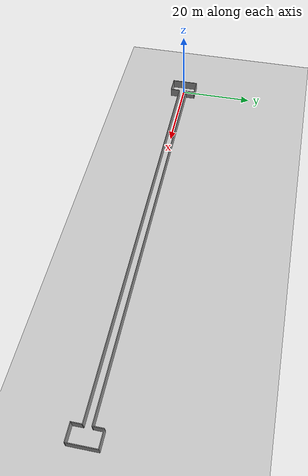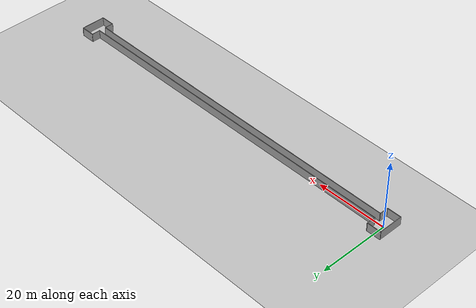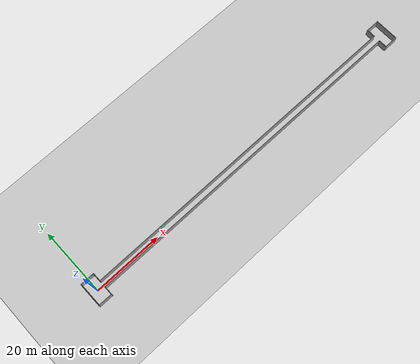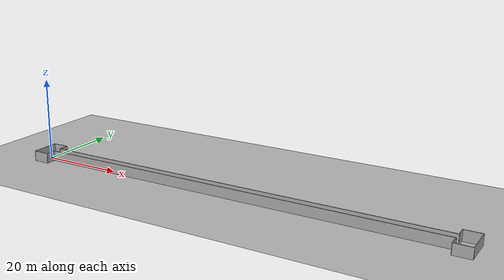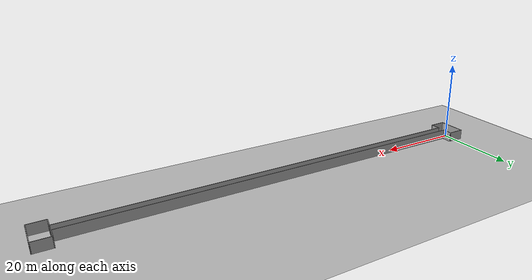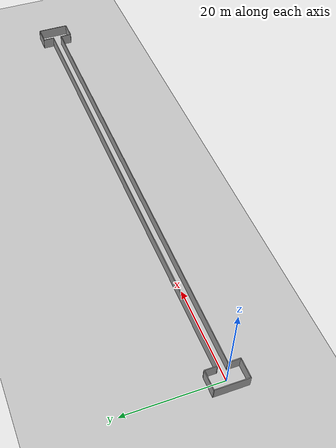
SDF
<sdf version="1.6">
 <world name="default">
  <light name="sun" type="directional">
   <pose>0 0 10 0 -0 0</pose>
   <diffuse>0.8 0.8 0.8 1</diffuse>
   <specular>0.2 0.2 0.2 1</specular>
   <attenuation>
    <range>1000</range>
    <constant>0.9</constant>
    <linear>0.01</linear>
    <quadratic>0.001</quadratic>
   </attenuation>
   <direction>-0.5 0.1 -0.9</direction>
  </light>
  <model name="ground_plane">
   <static>1</static>
   <link name="link">
    <collision name="collision">
     <geometry><plane><normal>0 0 1</normal><size>300 300</size></plane></geometry>
     <surface><friction><ode><mu>100</mu><mu2>50</mu2></ode></friction></surface>
    </collision>
    <visual name="visual">
     <cast_shadows>0</cast_shadows>
     <geometry><plane><normal>0 0 1</normal><size>300 300</size></plane></geometry>
     <material>
      <script><uri>file://media/materials/scripts/gazebo.material</uri><name>Gazebo/Grey</name></script>
     </material>
    </visual>
   </link>
  </model>
  <gravity>0 0 -9.8</gravity>
  <magnetic_field>6e-06 2.3e-05 -4.2e-05</magnetic_field>
  <atmosphere type="adiabatic"/>
  <physics name="default_physics" default="0" type="ode">
   <max_step_size>0.001</max_step_size>
   <real_time_factor>1</real_time_factor>
   <real_time_update_rate>1000</real_time_update_rate>
  </physics>
  <scene><ambient>0.4 0.4 0.4 1</ambient><background>0.7 0.7 0.7 1</background><shadows>1</shadows></scene>
  <spherical_coordinates>
   <surface_model>EARTH_WGS84</surface_model>
   <latitude_deg>0</latitude_deg>
   <longitude_deg>0</longitude_deg>
   <elevation>0</elevation>
   <heading_deg>0</heading_deg>
  </spherical_coordinates>
  <model name="Corridor">
   <pose>52 0 0 0 -0 0</pose>
   <link name="Wall_0">
    <collision name="Wall_0_Collision">
     <geometry><box><size>100.15 0.15 2.5</size></box></geometry>
     <pose>0 0 1.25 0 -0 0</pose>
    </collision>
    <visual name="Wall_0_Visual">
     <pose>0 0 1.25 0 -0 0</pose>
     <geometry><box><size>100.15 0.15 2.5</size></box></geometry>
     <material>
      <script><uri>file://media/materials/scripts/gazebo.material</uri><name>Gazebo/Grey</name></script>
      <ambient>1 1 1 1</ambient>
     </material>
     <meta><layer>0</layer></meta>
    </visual>
    <pose>2e-06 1 0 0 -0 3.14159</pose>
   </link>
   <link name="Wall_1">
    <collision name="Wall_1_Collision">
     <geometry><box><size>2.65 0.15 2.5</size></box></geometry>
     <pose>0 0 1.25 0 -0 0</pose>
    </collision>
    <visual name="Wall_1_Visual">
     <pose>0 0 1.25 0 -0 0</pose>
     <geometry><box><size>2.65 0.15 2.5</size></box></geometry>
     <material>
      <script><uri>file://media/materials/scripts/gazebo.material</uri><name>Gazebo/Grey</name></script>
      <ambient>1 1 1 1</ambient>
     </material>
     <meta><layer>0</layer></meta>
    </visual>
    <pose>-50 2.25 0 0 -0 1.5708</pose>
   </link>
   <link name="Wall_10">
    <collision name="Wall_10_Collision">
     <geometry><box><size>7.15 0.15 2.5</size></box></geometry>
     <pose>0 0 1.25 0 -0 0</pose>
    </collision>
    <visual name="Wall_10_Visual">
     <pose>0 0 1.25 0 -0 0</pose>
     <geometry><box><size>7.15 0.15 2.5</size></box></geometry>
     <material>
      <script><uri>file://media/materials/scripts/gazebo.material</uri><name>Gazebo/Grey</name></script>
      <ambient>1 1 1 1</ambient>
     </material>
     <meta><layer>0</layer></meta>
    </visual>
    <pose>54 0 0 0 0 -1.5708</pose>
   </link>
   <link name="Wall_11">
    <collision name="Wall_11_Collision">
     <geometry><box><size>4.15 0.15 2.5</size></box></geometry>
     <pose>0 0 1.25 0 -0 0</pose>
    </collision>
    <visual name="Wall_11_Visual">
     <pose>0 0 1.25 0 -0 0</pose>
     <geometry><box><size>4.15 0.15 2.5</size></box></geometry>
     <material>
      <script><uri>file://media/materials/scripts/gazebo.material</uri><name>Gazebo/Grey</name></script>
      <ambient>1 1 1 1</ambient>
     </material>
     <meta><layer>0</layer></meta>
    </visual>
    <pose>52 -3.5 0 0 -0 3.14159</pose>
   </link>
   <link name="Wall_12">
    <collision name="Wall_12_Collision">
     <geometry><box><size>2.65 0.15 2.5</size></box></geometry>
     <pose>0 0 1.25 0 -0 0</pose>
    </collision>
    <visual name="Wall_12_Visual">
     <pose>0 0 1.25 0 -0 0</pose>
     <geometry><box><size>2.65 0.15 2.5</size></box></geometry>
     <material>
      <script><uri>file://media/materials/scripts/gazebo.material</uri><name>Gazebo/Grey</name></script>
      <ambient>1 1 1 1</ambient>
     </material>
     <meta><layer>0</layer></meta>
    </visual>
    <pose>50 -2.25 0 0 -0 1.5708</pose>
   </link>
   <link name="Wall_2">
    <collision name="Wall_2_Collision">
     <geometry><box><size>4.15 0.15 2.5</size></box></geometry>
     <pose>0 0 1.25 0 -0 0</pose>
    </collision>
    <visual name="Wall_2_Visual">
     <pose>0 0 1.25 0 -0 0</pose>
     <geometry><box><size>4.15 0.15 2.5</size></box></geometry>
     <material>
      <script><uri>file://media/materials/scripts/gazebo.material</uri><name>Gazebo/Grey</name></script>
      <ambient>1 1 1 1</ambient>
     </material>
     <meta><layer>0</layer></meta>
    </visual>
    <pose>-52 3.5 0 0 -0 3.14159</pose>
   </link>
   <link name="Wall_3">
    <collision name="Wall_3_Collision">
     <geometry><box><size>7.15 0.15 2.5</size></box></geometry>
     <pose>0 0 1.25 0 -0 0</pose>
    </collision>
    <visual name="Wall_3_Visual">
     <pose>0 0 1.25 0 -0 0</pose>
     <geometry><box><size>7.15 0.15 2.5</size></box></geometry>
     <material>
      <script><uri>file://media/materials/scripts/gazebo.material</uri><name>Gazebo/Grey</name></script>
      <ambient>1 1 1 1</ambient>
     </material>
     <meta><layer>0</layer></meta>
    </visual>
    <pose>-54 0 0 0 0 -1.5708</pose>
   </link>
   <link name="Wall_4">
    <collision name="Wall_4_Collision">
     <geometry><box><size>4.15 0.15 2.5</size></box></geometry>
     <pose>0 0 1.25 0 -0 0</pose>
    </collision>
    <visual name="Wall_4_Visual">
     <pose>0 0 1.25 0 -0 0</pose>
     <geometry><box><size>4.15 0.15 2.5</size></box></geometry>
     <material>
      <script><uri>file://media/materials/scripts/gazebo.material</uri><name>Gazebo/Grey</name></script>
      <ambient>1 1 1 1</ambient>
     </material>
     <meta><layer>0</layer></meta>
    </visual>
    <pose>-52 -3.5 0 0 -0 0</pose>
   </link>
   <link name="Wall_5">
    <collision name="Wall_5_Collision">
     <geometry><box><size>2.65 0.15 2.5</size></box></geometry>
     <pose>0 0 1.25 0 -0 0</pose>
    </collision>
    <visual name="Wall_5_Visual">
     <pose>0 0 1.25 0 -0 0</pose>
     <geometry><box><size>2.65 0.15 2.5</size></box></geometry>
     <material>
      <script><uri>file://media/materials/scripts/gazebo.material</uri><name>Gazebo/Grey</name></script>
      <ambient>1 1 1 1</ambient>
     </material>
     <meta><layer>0</layer></meta>
    </visual>
    <pose>-50 -2.25 0 0 -0 1.5708</pose>
   </link>
   <link name="Wall_6">
    <collision name="Wall_6_Collision">
     <geometry><box><size>100.15 0.15 2.5</size></box></geometry>
     <pose>0 0 1.25 0 -0 0</pose>
    </collision>
    <visual name="Wall_6_Visual">
     <pose>0 0 1.25 0 -0 0</pose>
     <geometry><box><size>100.15 0.15 2.5</size></box></geometry>
     <material>
      <script><uri>file://media/materials/scripts/gazebo.material</uri><name>Gazebo/Grey</name></script>
      <ambient>1 1 1 1</ambient>
     </material>
     <meta><layer>0</layer></meta>
    </visual>
    <pose>2e-06 -1 0 0 -0 0</pose>
   </link>
   <link name="Wall_8">
    <collision name="Wall_8_Collision">
     <geometry><box><size>2.65 0.15 2.5</size></box></geometry>
     <pose>0 0 1.25 0 -0 0</pose>
    </collision>
    <visual name="Wall_8_Visual">
     <pose>0 0 1.25 0 -0 0</pose>
     <geometry><box><size>2.65 0.15 2.5</size></box></geometry>
     <material>
      <script><uri>file://media/materials/scripts/gazebo.material</uri><name>Gazebo/Grey</name></script>
      <ambient>1 1 1 1</ambient>
     </material>
     <meta><layer>0</layer></meta>
    </visual>
    <pose>50 2.25 0 0 -0 1.5708</pose>
   </link>
   <link name="Wall_9">
    <collision name="Wall_9_Collision">
     <geometry><box><size>4.15 0.15 2.5</size></box></geometry>
     <pose>0 0 1.25 0 -0 0</pose>
    </collision>
    <visual name="Wall_9_Visual">
     <pose>0 0 1.25 0 -0 0</pose>
     <geometry><box><size>4.15 0.15 2.5</size></box></geometry>
     <material>
      <script><uri>file://media/materials/scripts/gazebo.material</uri><name>Gazebo/Grey</name></script>
      <ambient>1 1 1 1</ambient>
     </material>
     <meta><layer>0</layer></meta>
    </visual>
    <pose>52 3.5 0 0 -0 0</pose>
   </link>
   <static>1</static>
  </model>
 </world>
</sdf>
